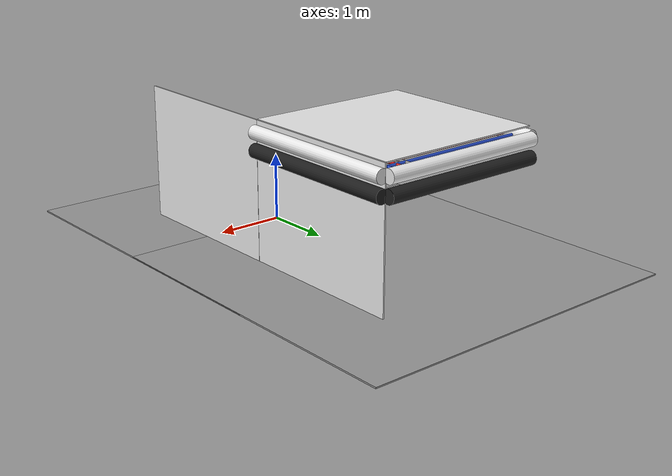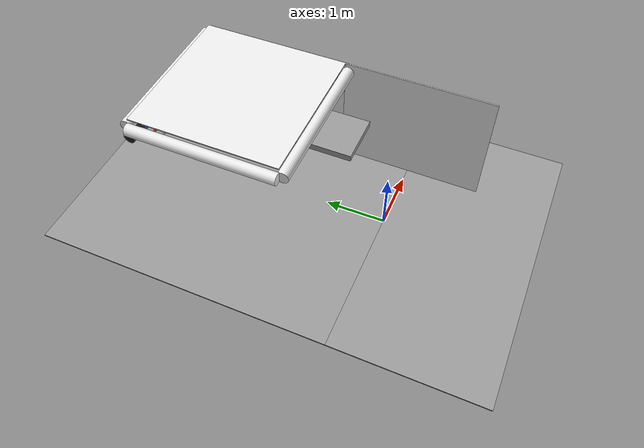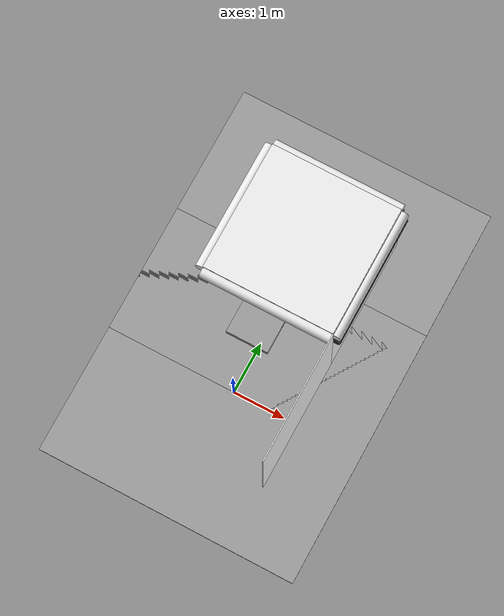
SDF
<sdf version="1.6">
 <world name="default">
  <model name="wall_right_0_0_0_0">
   <static>1</static>
   <pose>1.25 0.0 1.0 0.0 0.0 1.57</pose>
   <link name="link">
    <collision name="collision"><geometry><box><size>2.5 0.02 2.0</size></box></geometry></collision>
    <visual name="visual">
     <material>
      <script><name>Gazebo/White</name><uri>file://media/materials/scripts/gazebo.material</uri></script>
     </material>
     <geometry><box><size>2.5 0.02 2.0</size></box></geometry>
    </visual>
   </link>
  </model>
  <model name="ceiling_1_0_0_2_0">
   <pose>0.0 1.0 1.7 0.0 0.0 0.0</pose>
   <link name="link_1">
    <visual name="visual">
     <geometry><box><size>0.8 1 0.1</size></box></geometry>
     <material>
      <script><uri>file://media/materials/scripts/gazebo.material</uri><name>Gazebo/Grey</name></script>
     </material>
    </visual>
    <collision name="collision"><geometry><box><size>0.8 1 0.1</size></box></geometry></collision>
   </link>
   <static>1</static>
  </model>
  <model name="wall_bottom_0_0_0_0">
   <static>1</static>
   <link name="link">
    <collision name="collision"><geometry><box><size>5.0 5.0 0.02</size></box></geometry></collision>
    <visual name="visual">
     <material>
      <script><name>Gazebo/Grey</name><uri>file://media/materials/scripts/gazebo.material</uri></script>
     </material>
     <geometry><box><size>5.0 5.0 0.02</size></box></geometry>
    </visual>
   </link>
  </model>
  <model name="wall_right_0_1_0_3">
   <static>1</static>
   <pose>1.25 2.5 1.0 0.0 0.0 1.57</pose>
   <link name="link">
    <collision name="collision"><geometry><box><size>2.5 0.02 2.0</size></box></geometry></collision>
    <visual name="visual">
     <material>
      <script><name>Gazebo/White</name><uri>file://media/materials/scripts/gazebo.material</uri></script>
     </material>
     <geometry><box><size>2.5 0.02 2.0</size></box></geometry>
    </visual>
   </link>
  </model>
  <model name="wall_top_0_1_0_3">
   <static>1</static>
   <pose>0.0 2.5 2.0 1.57 0.0 0.0</pose>
   <link name="link">
    <collision name="collision"><geometry><box><size>2.5 0.02 2.5</size></box></geometry></collision>
    <visual name="visual">
     <material>
      <script><name>Gazebo/White</name><uri>file://media/materials/scripts/gazebo.material</uri></script>
     </material>
     <geometry><box><size>2.5 0.02 2.5</size></box></geometry>
    </visual>
   </link>
  </model>
  <model name="ceiling_1_0_1_0_3">
   <pose>0.0 1.5 1.7 0.0 0.0 0.0</pose>
   <link name="link_1">
    <visual name="visual">
     <geometry><box><size>0.8 1 0.1</size></box></geometry>
     <material>
      <script><uri>file://media/materials/scripts/gazebo.material</uri><name>Gazebo/Grey</name></script>
     </material>
    </visual>
    <collision name="collision"><geometry><box><size>0.8 1 0.1</size></box></geometry></collision>
   </link>
   <static>1</static>
  </model>
  <model name="white_pipe_left_0_1_0_3">
   <static>1</static>
   <pose>0.0 2.5 1.84 0.0 0.0 0.0</pose>
   <link name="link_0">
    <visual name="visual">
     <pose>-1.3 0 0 1.57 0 0</pose>
     <geometry><cylinder><radius>0.1</radius><length>2.5</length></cylinder></geometry>
     <material>
      <script><uri>file://media/materials/scripts/gazebo.material</uri><name>Gazebo/White</name></script>
     </material>
    </visual>
    <collision name="collision">
     <pose>-1.3 0 0 1.57 0 0</pose>
     <geometry><cylinder><radius>0.1</radius><length>2.5</length></cylinder></geometry>
    </collision>
   </link>
  </model>
  <model name="white_pipe_right_0_1_0_3">
   <static>1</static>
   <pose>0.0 2.5 1.84 0.0 0.0 0.0</pose>
   <link name="link_0">
    <visual name="visual">
     <pose>1.3 0 0 1.57 0 0</pose>
     <geometry><cylinder><radius>0.1</radius><length>2.5</length></cylinder></geometry>
     <material>
      <script><uri>file://media/materials/scripts/gazebo.material</uri><name>Gazebo/White</name></script>
     </material>
    </visual>
    <collision name="collision">
     <pose>1.3 0 0 1.57 0 0</pose>
     <geometry><cylinder><radius>0.1</radius><length>2.5</length></cylinder></geometry>
    </collision>
   </link>
  </model>
  <model name="black_pipe_right_0_1_0_3">
   <static>1</static>
   <pose>0.0 2.5 1.84 0.0 0.0 0.0</pose>
   <link name="link_0">
    <visual name="visual">
     <pose>1.3 0 -0.25 1.57 0 0</pose>
     <geometry><cylinder><radius>0.1</radius><length>2.5</length></cylinder></geometry>
     <material>
      <script><uri>file://media/materials/scripts/gazebo.material</uri><name>Gazebo/Black</name></script>
     </material>
    </visual>
    <collision name="collision">
     <pose>1.3 0 -0.25 1.57 0 0</pose>
     <geometry><cylinder><radius>0.1</radius><length>2.5</length></cylinder></geometry>
    </collision>
   </link>
  </model>
  <model name="grey_pipe_right_0_1_0_3">
   <static>1</static>
   <pose>0.0 2.5 1.84 0.0 0.0 0.0</pose>
   <link name="link_0">
    <visual name="visual">
     <pose>0.7 0 0 1.57 0 0</pose>
     <geometry><cylinder><radius>0.02</radius><length>2.5</length></cylinder></geometry>
     <material>
      <script><uri>file://media/materials/scripts/gazebo.material</uri><name>Gazebo/Grey</name></script>
     </material>
    </visual>
    <collision name="collision">
     <pose>0.7 0 0 1.57 0 0</pose>
     <geometry><cylinder><radius>0.02</radius><length>2.5</length></cylinder></geometry>
    </collision>
   </link>
  </model>
  <model name="red_pipe_right_0_1_0_3">
   <static>1</static>
   <pose>0.0 2.5 1.84 0.0 0.0 0.0</pose>
   <link name="link_0">
    <visual name="visual">
     <pose>0.85 0 0 1.57 0 0</pose>
     <geometry><cylinder><radius>0.02</radius><length>2.5</length></cylinder></geometry>
     <material>
      <script><uri>file://media/materials/scripts/gazebo.material</uri><name>Gazebo/Red</name></script>
     </material>
    </visual>
    <collision name="collision">
     <pose>0.85 0 0 1.57 0 0</pose>
     <geometry><cylinder><radius>0.02</radius><length>2.5</length></cylinder></geometry>
    </collision>
   </link>
  </model>
  <model name="blue_pipe_right_0_1_0_3">
   <static>1</static>
   <pose>0.0 2.5 1.84 0.0 0.0 0.0</pose>
   <link name="link_0">
    <visual name="visual">
     <pose>1 0 0 1.57 0 0</pose>
     <geometry><cylinder><radius>0.02</radius><length>2.5</length></cylinder></geometry>
     <material>
      <script><uri>file://media/materials/scripts/gazebo.material</uri><name>Gazebo/Blue</name></script>
     </material>
    </visual>
    <collision name="collision">
     <pose>1 0 0 1.57 0 0</pose>
     <geometry><cylinder><radius>0.02</radius><length>2.5</length></cylinder></geometry>
    </collision>
   </link>
  </model>
  <model name="white_pipe_left_1_0_1_0_3">
   <static>1</static>
   <pose>0.0 2.5 1.84 0.0 0.0 1.57</pose>
   <link name="link_0">
    <visual name="visual">
     <pose>-1.3 0 0 1.57 0 0</pose>
     <geometry><cylinder><radius>0.1</radius><length>2.5</length></cylinder></geometry>
     <material>
      <script><uri>file://media/materials/scripts/gazebo.material</uri><name>Gazebo/White</name></script>
     </material>
    </visual>
    <collision name="collision">
     <pose>-1.3 0 0 1.57 0 0</pose>
     <geometry><cylinder><radius>0.1</radius><length>2.5</length></cylinder></geometry>
    </collision>
   </link>
  </model>
  <model name="white_pipe_right_1_0_1_0_3">
   <static>1</static>
   <pose>0.0 2.5 1.84 0.0 0.0 1.57</pose>
   <link name="link_0">
    <visual name="visual">
     <pose>1.3 0 0 1.57 0 0</pose>
     <geometry><cylinder><radius>0.1</radius><length>2.5</length></cylinder></geometry>
     <material>
      <script><uri>file://media/materials/scripts/gazebo.material</uri><name>Gazebo/White</name></script>
     </material>
    </visual>
    <collision name="collision">
     <pose>1.3 0 0 1.57 0 0</pose>
     <geometry><cylinder><radius>0.1</radius><length>2.5</length></cylinder></geometry>
    </collision>
   </link>
  </model>
  <model name="black_pipe_right_1_0_1_0_3">
   <static>1</static>
   <pose>0.0 2.5 1.84 0.0 0.0 1.57</pose>
   <link name="link_0">
    <visual name="visual">
     <pose>1.3 0 -0.25 1.57 0 0</pose>
     <geometry><cylinder><radius>0.1</radius><length>2.5</length></cylinder></geometry>
     <material>
      <script><uri>file://media/materials/scripts/gazebo.material</uri><name>Gazebo/Black</name></script>
     </material>
    </visual>
    <collision name="collision">
     <pose>1.3 0 -0.25 1.57 0 0</pose>
     <geometry><cylinder><radius>0.1</radius><length>2.5</length></cylinder></geometry>
    </collision>
   </link>
  </model>
  <model name="grey_pipe_right_1_0_1_0_3">
   <static>1</static>
   <pose>0.0 2.5 1.84 0.0 0.0 1.57</pose>
   <link name="link_0">
    <visual name="visual">
     <pose>0.7 0 0 1.57 0 0</pose>
     <geometry><cylinder><radius>0.02</radius><length>2.5</length></cylinder></geometry>
     <material>
      <script><uri>file://media/materials/scripts/gazebo.material</uri><name>Gazebo/Grey</name></script>
     </material>
    </visual>
    <collision name="collision">
     <pose>0.7 0 0 1.57 0 0</pose>
     <geometry><cylinder><radius>0.02</radius><length>2.5</length></cylinder></geometry>
    </collision>
   </link>
  </model>
  <model name="red_pipe_right_1_0_1_0_3">
   <static>1</static>
   <pose>0.0 2.5 1.84 0.0 0.0 1.57</pose>
   <link name="link_0">
    <visual name="visual">
     <pose>0.85 0 0 1.57 0 0</pose>
     <geometry><cylinder><radius>0.02</radius><length>2.5</length></cylinder></geometry>
     <material>
      <script><uri>file://media/materials/scripts/gazebo.material</uri><name>Gazebo/Red</name></script>
     </material>
    </visual>
    <collision name="collision">
     <pose>0.85 0 0 1.57 0 0</pose>
     <geometry><cylinder><radius>0.02</radius><length>2.5</length></cylinder></geometry>
    </collision>
   </link>
  </model>
  <model name="blue_pipe_right_1_0_1_0_3">
   <static>1</static>
   <pose>0.0 2.5 1.84 0.0 0.0 1.57</pose>
   <link name="link_0">
    <visual name="visual">
     <pose>1 0 0 1.57 0 0</pose>
     <geometry><cylinder><radius>0.02</radius><length>2.5</length></cylinder></geometry>
     <material>
      <script><uri>file://media/materials/scripts/gazebo.material</uri><name>Gazebo/Blue</name></script>
     </material>
    </visual>
    <collision name="collision">
     <pose>1 0 0 1.57 0 0</pose>
     <geometry><cylinder><radius>0.02</radius><length>2.5</length></cylinder></geometry>
    </collision>
   </link>
  </model>
  <model name="wall_bottom_0_1_0_3">
   <static>1</static>
   <pose>0.0 2.5 0.0 0.0 0.0 0.0</pose>
   <link name="link">
    <collision name="collision"><geometry><box><size>5.0 5.0 0.02</size></box></geometry></collision>
    <visual name="visual">
     <material>
      <script><name>Gazebo/Grey</name><uri>file://media/materials/scripts/gazebo.material</uri></script>
     </material>
     <geometry><box><size>5.0 5.0 0.02</size></box></geometry>
    </visual>
   </link>
  </model>
 </world>
</sdf>
